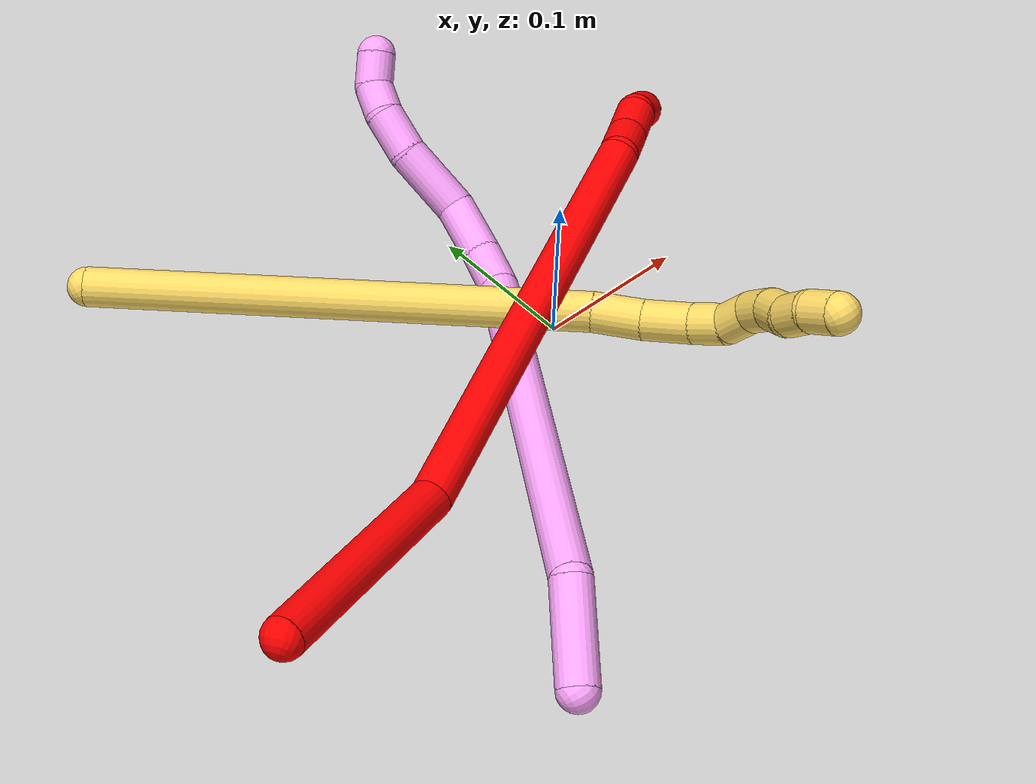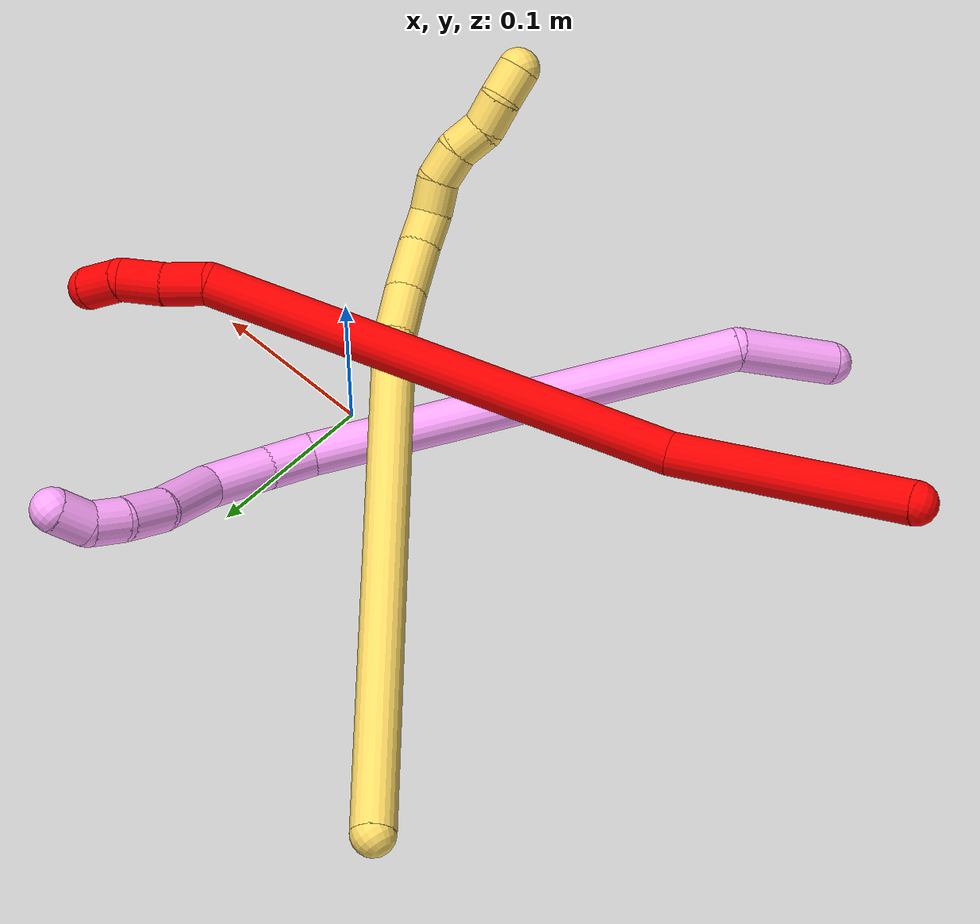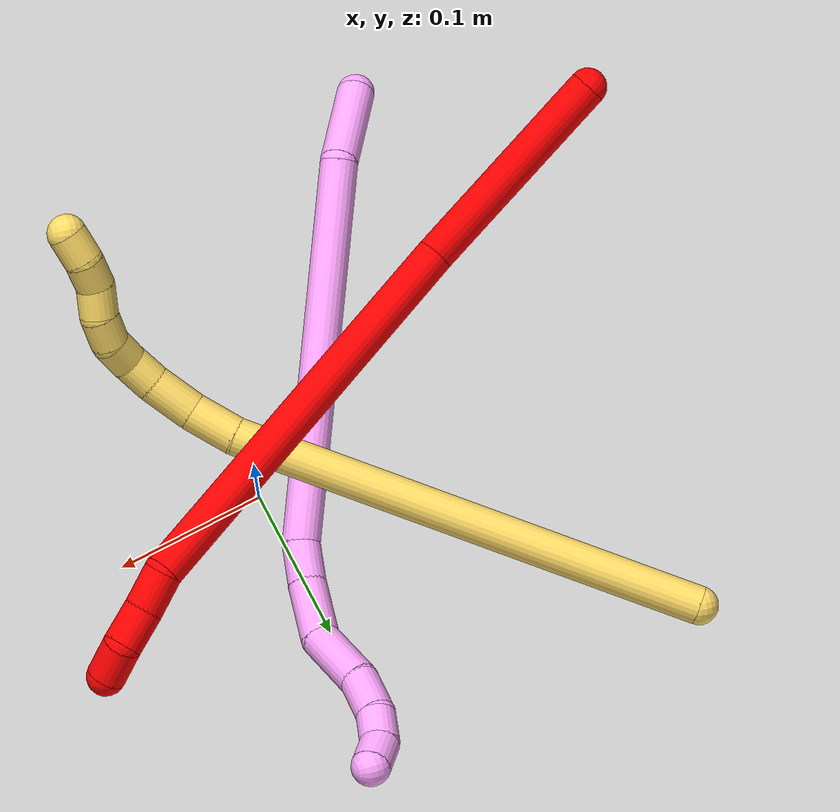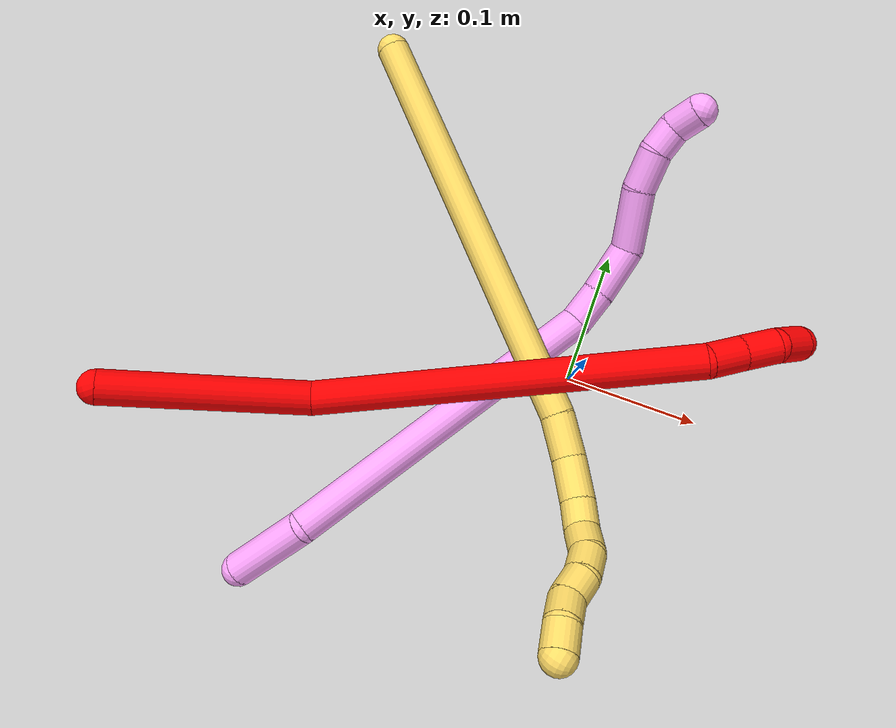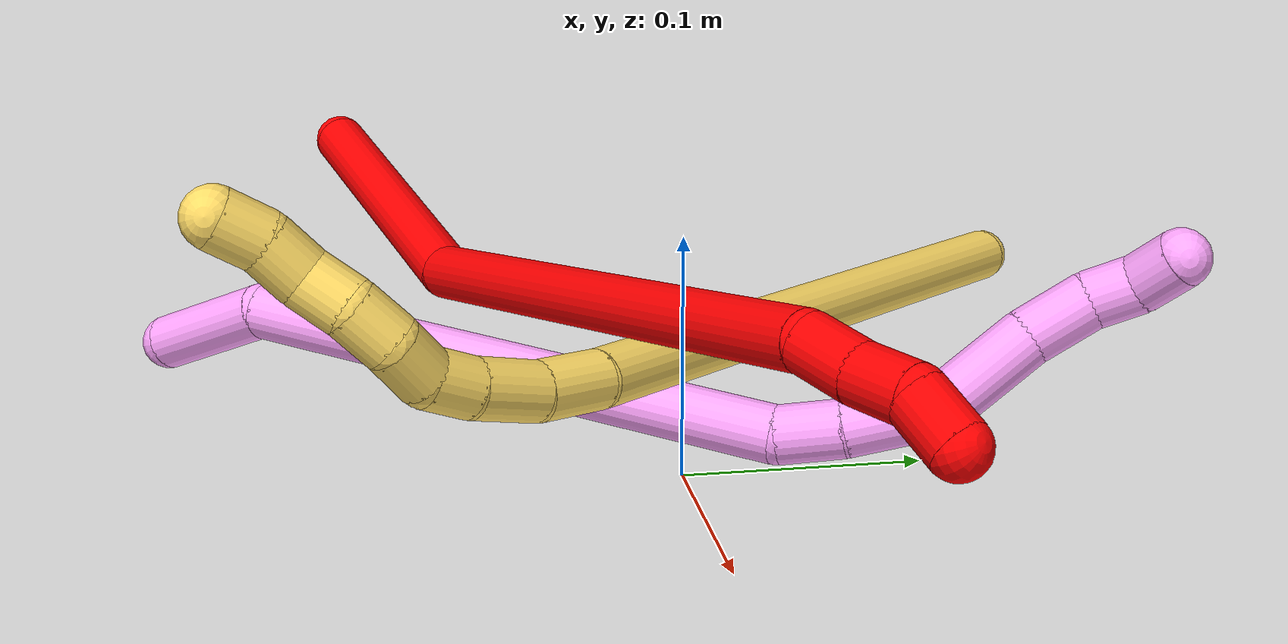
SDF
<sdf version="1.7">
 <world name="default">
  <model name="2">
   <static>0</static>
   <link name="2">
    <collision name="collision-cylinder-e_1_1_4">
     <pose>0.026063 0.039855 -0.055391 -2.51788 0.364831 -1.03947</pose>
     <geometry><cylinder><radius>0.0125</radius><length>0.146095</length></cylinder></geometry>
     <surface>
      <friction><ode><mu>1.16</mu><mu2>1.16</mu2><slip1>0</slip1><slip2>0</slip2></ode></friction>
      <contact><ode><kp>1e+06</kp><kd>1</kd><max_vel>0</max_vel><min_depth>0.001</min_depth></ode></contact>
     </surface>
    </collision>
    <visual name="visual-cylinder-e_1_1_4">
     <pose>0.026063 0.039855 -0.055391 -2.51788 0.364831 -1.03947</pose>
     <geometry><cylinder><radius>0.0125</radius><length>0.146095</length></cylinder></geometry>
     <material><ambient>1 0 0 1</ambient></material>
    </visual>
    <collision name="collision-cylinder-e_2_4_5">
     <pose>0.070415 0.117326 -0.242901 -2.86422 0.132363 -0.886634</pose>
     <geometry><cylinder><radius>0.0125</radius><length>0.277162</length></cylinder></geometry>
     <surface>
      <friction><ode><mu>1.16</mu><mu2>1.16</mu2><slip1>0</slip1><slip2>0</slip2></ode></friction>
      <contact><ode><kp>1e+06</kp><kd>1</kd><max_vel>0</max_vel><min_depth>0.001</min_depth></ode></contact>
     </surface>
    </collision>
    <visual name="visual-cylinder-e_2_4_5">
     <pose>0.070415 0.117326 -0.242901 -2.86422 0.132363 -0.886634</pose>
     <geometry><cylinder><radius>0.0125</radius><length>0.277162</length></cylinder></geometry>
     <material><ambient>1 0 0 1</ambient></material>
    </visual>
    <collision name="collision-cylinder-e_3_5_6">
     <pose>0.095317 0.1593 -0.385757 -2.75605 0.518521 -1.87271</pose>
     <geometry><cylinder><radius>0.0125</radius><length>0.026686</length></cylinder></geometry>
     <surface>
      <friction><ode><mu>1.16</mu><mu2>1.16</mu2><slip1>0</slip1><slip2>0</slip2></ode></friction>
      <contact><ode><kp>1e+06</kp><kd>1</kd><max_vel>0</max_vel><min_depth>0.001</min_depth></ode></contact>
     </surface>
    </collision>
    <visual name="visual-cylinder-e_3_5_6">
     <pose>0.095317 0.1593 -0.385757 -2.75605 0.518521 -1.87271</pose>
     <geometry><cylinder><radius>0.0125</radius><length>0.026686</length></cylinder></geometry>
     <material><ambient>1 0 0 1</ambient></material>
    </visual>
    <collision name="collision-cylinder-e_4_6_7">
     <pose>0.106756 0.167134 -0.407972 -2.84749 0.382631 -1.83585</pose>
     <geometry><cylinder><radius>0.0125</radius><length>0.025853</length></cylinder></geometry>
     <surface>
      <friction><ode><mu>1.16</mu><mu2>1.16</mu2><slip1>0</slip1><slip2>0</slip2></ode></friction>
      <contact><ode><kp>1e+06</kp><kd>1</kd><max_vel>0</max_vel><min_depth>0.001</min_depth></ode></contact>
     </surface>
    </collision>
    <visual name="visual-cylinder-e_4_6_7">
     <pose>0.106756 0.167134 -0.407972 -2.84749 0.382631 -1.83585</pose>
     <geometry><cylinder><radius>0.0125</radius><length>0.025853</length></cylinder></geometry>
     <material><ambient>1 0 0 1</ambient></material>
    </visual>
    <collision name="collision-cylinder-e_5_7_2">
     <pose>0.119554 0.176723 -0.426199 -2.40568 0.719057 -1.54544</pose>
     <geometry><cylinder><radius>0.0125</radius><length>0.024205</length></cylinder></geometry>
     <surface>
      <friction><ode><mu>1.16</mu><mu2>1.16</mu2><slip1>0</slip1><slip2>0</slip2></ode></friction>
      <contact><ode><kp>1e+06</kp><kd>1</kd><max_vel>0</max_vel><min_depth>0.001</min_depth></ode></contact>
     </surface>
    </collision>
    <visual name="visual-cylinder-e_5_7_2">
     <pose>0.119554 0.176723 -0.426199 -2.40568 0.719057 -1.54544</pose>
     <geometry><cylinder><radius>0.0125</radius><length>0.024205</length></cylinder></geometry>
     <material><ambient>1 0 0 1</ambient></material>
    </visual>
    <collision name="collision-sphere-2">
     <pose>0.127525 0.182836 -0.432949 0 -0 0</pose>
     <geometry><sphere><radius>0.0125</radius></sphere></geometry>
     <surface>
      <friction><ode><mu>1.16</mu><mu2>1.16</mu2><slip1>0</slip1><slip2>0</slip2></ode></friction>
      <contact><ode><kp>1e+06</kp><kd>1</kd><max_vel>0</max_vel><min_depth>0.001</min_depth></ode></contact>
     </surface>
    </collision>
    <visual name="visual-sphere-2">
     <pose>0.127525 0.182836 -0.432949 0 -0 0</pose>
     <geometry><sphere><radius>0.0125</radius></sphere></geometry>
     <material><ambient>1 0 0 1</ambient></material>
    </visual>
    <collision name="collision-sphere-7">
     <pose>0.111582 0.17061 -0.419449 0 -0 0</pose>
     <geometry><sphere><radius>0.0125</radius></sphere></geometry>
     <surface>
      <friction><ode><mu>1.16</mu><mu2>1.16</mu2><slip1>0</slip1><slip2>0</slip2></ode></friction>
      <contact><ode><kp>1e+06</kp><kd>1</kd><max_vel>0</max_vel><min_depth>0.001</min_depth></ode></contact>
     </surface>
    </collision>
    <visual name="visual-sphere-7">
     <pose>0.111582 0.17061 -0.419449 0 -0 0</pose>
     <geometry><sphere><radius>0.0125</radius></sphere></geometry>
     <material><ambient>1 0 0 1</ambient></material>
    </visual>
    <collision name="collision-sphere-6">
     <pose>0.10193 0.163658 -0.396496 0 -0 0</pose>
     <geometry><sphere><radius>0.0125</radius></sphere></geometry>
     <surface>
      <friction><ode><mu>1.16</mu><mu2>1.16</mu2><slip1>0</slip1><slip2>0</slip2></ode></friction>
      <contact><ode><kp>1e+06</kp><kd>1</kd><max_vel>0</max_vel><min_depth>0.001</min_depth></ode></contact>
     </surface>
    </collision>
    <visual name="visual-sphere-6">
     <pose>0.10193 0.163658 -0.396496 0 -0 0</pose>
     <geometry><sphere><radius>0.0125</radius></sphere></geometry>
     <material><ambient>1 0 0 1</ambient></material>
    </visual>
    <collision name="collision-sphere-5">
     <pose>0.088704 0.154941 -0.375019 0 -0 0</pose>
     <geometry><sphere><radius>0.0125</radius></sphere></geometry>
     <surface>
      <friction><ode><mu>1.16</mu><mu2>1.16</mu2><slip1>0</slip1><slip2>0</slip2></ode></friction>
      <contact><ode><kp>1e+06</kp><kd>1</kd><max_vel>0</max_vel><min_depth>0.001</min_depth></ode></contact>
     </surface>
    </collision>
    <visual name="visual-sphere-5">
     <pose>0.088704 0.154941 -0.375019 0 -0 0</pose>
     <geometry><sphere><radius>0.0125</radius></sphere></geometry>
     <material><ambient>1 0 0 1</ambient></material>
    </visual>
    <collision name="collision-sphere-1">
     <geometry><sphere><radius>0.0125</radius></sphere></geometry>
     <surface>
      <friction><ode><mu>1.16</mu><mu2>1.16</mu2><slip1>0</slip1><slip2>0</slip2></ode></friction>
      <contact><ode><kp>1e+06</kp><kd>1</kd><max_vel>0</max_vel><min_depth>0.001</min_depth></ode></contact>
     </surface>
    </collision>
    <visual name="visual-sphere-1">
     <geometry><sphere><radius>0.0125</radius></sphere></geometry>
     <material><ambient>1 0 0 1</ambient></material>
    </visual>
    <collision name="collision-sphere-4">
     <pose>0.052125 0.079711 -0.110782 0 -0 0</pose>
     <geometry><sphere><radius>0.0125</radius></sphere></geometry>
     <surface>
      <friction><ode><mu>1.16</mu><mu2>1.16</mu2><slip1>0</slip1><slip2>0</slip2></ode></friction>
      <contact><ode><kp>1e+06</kp><kd>1</kd><max_vel>0</max_vel><min_depth>0.001</min_depth></ode></contact>
     </surface>
    </collision>
    <visual name="visual-sphere-4">
     <pose>0.052125 0.079711 -0.110782 0 -0 0</pose>
     <geometry><sphere><radius>0.0125</radius></sphere></geometry>
     <material><ambient>1 0 0 1</ambient></material>
    </visual>
    <inertial>
     <pose>0.063042 0.102381 -0.213146 0 -0 0</pose>
     <mass>0.5</mass>
     <inertia>
      <ixx>-0.000338</ixx>
      <ixy>0</ixy>
      <ixz>0</ixz>
      <iyy>-0.00267</iyy>
      <iyz>0</iyz>
      <izz>-0.001</izz>
     </inertia>
    </inertial>
   </link>
   <pose>-0.305227 -0.126104 0.079796 -2.21176 0.842094 1.62914</pose>
  </model>
  <model name="4">
   <static>0</static>
   <link name="4">
    <collision name="collision-cylinder-e_1_1_4">
     <pose>0.00404 0.025318 0.016724 -0.987049 0.132352 -0.071269</pose>
     <geometry><cylinder><radius>0.0125</radius><length>0.061221</length></cylinder></geometry>
     <surface>
      <friction><ode><mu>1.16</mu><mu2>1.16</mu2><slip1>0</slip1><slip2>0</slip2></ode></friction>
      <contact><ode><kp>1e+06</kp><kd>1</kd><max_vel>0</max_vel><min_depth>0.001</min_depth></ode></contact>
     </surface>
    </collision>
    <visual name="visual-cylinder-e_1_1_4">
     <pose>0.00404 0.025318 0.016724 -0.987049 0.132352 -0.071269</pose>
     <geometry><cylinder><radius>0.0125</radius><length>0.061221</length></cylinder></geometry>
     <material><ambient>1 0.65098 0.996078 1</ambient></material>
    </visual>
    <collision name="collision-cylinder-e_2_4_5">
     <pose>0.08127 0.140519 0.082413 -1.07197 0.620769 -0.376531</pose>
     <geometry><cylinder><radius>0.0125</radius><length>0.251663</length></cylinder></geometry>
     <surface>
      <friction><ode><mu>1.16</mu><mu2>1.16</mu2><slip1>0</slip1><slip2>0</slip2></ode></friction>
      <contact><ode><kp>1e+06</kp><kd>1</kd><max_vel>0</max_vel><min_depth>0.001</min_depth></ode></contact>
     </surface>
    </collision>
    <visual name="visual-cylinder-e_2_4_5">
     <pose>0.08127 0.140519 0.082413 -1.07197 0.620769 -0.376531</pose>
     <geometry><cylinder><radius>0.0125</radius><length>0.251663</length></cylinder></geometry>
     <material><ambient>1 0.65098 0.996078 1</ambient></material>
    </visual>
    <collision name="collision-cylinder-e_3_5_6">
     <pose>0.159305 0.243271 0.134481 -1.33427 0.350711 -0.277296</pose>
     <geometry><cylinder><radius>0.0125</radius><length>0.028193</length></cylinder></geometry>
     <surface>
      <friction><ode><mu>1.16</mu><mu2>1.16</mu2><slip1>0</slip1><slip2>0</slip2></ode></friction>
      <contact><ode><kp>1e+06</kp><kd>1</kd><max_vel>0</max_vel><min_depth>0.001</min_depth></ode></contact>
     </surface>
    </collision>
    <visual name="visual-cylinder-e_3_5_6">
     <pose>0.159305 0.243271 0.134481 -1.33427 0.350711 -0.277296</pose>
     <geometry><cylinder><radius>0.0125</radius><length>0.028193</length></cylinder></geometry>
     <material><ambient>1 0.65098 0.996078 1</ambient></material>
    </visual>
    <collision name="collision-cylinder-e_4_6_7">
     <pose>0.168936 0.274979 0.140815 -1.40094 0.245459 -0.207245</pose>
     <geometry><cylinder><radius>0.0125</radius><length>0.039408</length></cylinder></geometry>
     <surface>
      <friction><ode><mu>1.16</mu><mu2>1.16</mu2><slip1>0</slip1><slip2>0</slip2></ode></friction>
      <contact><ode><kp>1e+06</kp><kd>1</kd><max_vel>0</max_vel><min_depth>0.001</min_depth></ode></contact>
     </surface>
    </collision>
    <visual name="visual-cylinder-e_4_6_7">
     <pose>0.168936 0.274979 0.140815 -1.40094 0.245459 -0.207245</pose>
     <geometry><cylinder><radius>0.0125</radius><length>0.039408</length></cylinder></geometry>
     <material><ambient>1 0.65098 0.996078 1</ambient></material>
    </visual>
    <collision name="collision-cylinder-e_5_7_8">
     <pose>0.169709 0.316738 0.140722 -1.7148 -0.171665 0.19819</pose>
     <geometry><cylinder><radius>0.0125</radius><length>0.047011</length></cylinder></geometry>
     <surface>
      <friction><ode><mu>1.16</mu><mu2>1.16</mu2><slip1>0</slip1><slip2>0</slip2></ode></friction>
      <contact><ode><kp>1e+06</kp><kd>1</kd><max_vel>0</max_vel><min_depth>0.001</min_depth></ode></contact>
     </surface>
    </collision>
    <visual name="visual-cylinder-e_5_7_8">
     <pose>0.169709 0.316738 0.140722 -1.7148 -0.171665 0.19819</pose>
     <geometry><cylinder><radius>0.0125</radius><length>0.047011</length></cylinder></geometry>
     <material><ambient>1 0.65098 0.996078 1</ambient></material>
    </visual>
    <collision name="collision-cylinder-e_6_8_9">
     <pose>0.164689 0.354538 0.138404 -1.50332 -0.067233 0.062846</pose>
     <geometry><cylinder><radius>0.0125</radius><length>0.029896</length></cylinder></geometry>
     <surface>
      <friction><ode><mu>1.16</mu><mu2>1.16</mu2><slip1>0</slip1><slip2>0</slip2></ode></friction>
      <contact><ode><kp>1e+06</kp><kd>1</kd><max_vel>0</max_vel><min_depth>0.001</min_depth></ode></contact>
     </surface>
    </collision>
    <visual name="visual-cylinder-e_6_8_9">
     <pose>0.164689 0.354538 0.138404 -1.50332 -0.067233 0.062846</pose>
     <geometry><cylinder><radius>0.0125</radius><length>0.029896</length></cylinder></geometry>
     <material><ambient>1 0.65098 0.996078 1</ambient></material>
    </visual>
    <collision name="collision-cylinder-e_7_9_10">
     <pose>0.164902 0.379395 0.142341 -1.28499 0.116488 -0.087227</pose>
     <geometry><cylinder><radius>0.0125</radius><length>0.020938</length></cylinder></geometry>
     <surface>
      <friction><ode><mu>1.16</mu><mu2>1.16</mu2><slip1>0</slip1><slip2>0</slip2></ode></friction>
      <contact><ode><kp>1e+06</kp><kd>1</kd><max_vel>0</max_vel><min_depth>0.001</min_depth></ode></contact>
     </surface>
    </collision>
    <visual name="visual-cylinder-e_7_9_10">
     <pose>0.164902 0.379395 0.142341 -1.28499 0.116488 -0.087227</pose>
     <geometry><cylinder><radius>0.0125</radius><length>0.020938</length></cylinder></geometry>
     <material><ambient>1 0.65098 0.996078 1</ambient></material>
    </visual>
    <collision name="collision-cylinder-e_8_10_2">
     <pose>0.164457 0.397715 0.151983 -0.893446 -0.153952 0.073858</pose>
     <geometry><cylinder><radius>0.0125</radius><length>0.021671</length></cylinder></geometry>
     <surface>
      <friction><ode><mu>1.16</mu><mu2>1.16</mu2><slip1>0</slip1><slip2>0</slip2></ode></friction>
      <contact><ode><kp>1e+06</kp><kd>1</kd><max_vel>0</max_vel><min_depth>0.001</min_depth></ode></contact>
     </surface>
    </collision>
    <visual name="visual-cylinder-e_8_10_2">
     <pose>0.164457 0.397715 0.151983 -0.893446 -0.153952 0.073858</pose>
     <geometry><cylinder><radius>0.0125</radius><length>0.021671</length></cylinder></geometry>
     <material><ambient>1 0.65098 0.996078 1</ambient></material>
    </visual>
    <collision name="collision-sphere-2">
     <pose>0.162795 0.406058 0.158694 0 -0 0</pose>
     <geometry><sphere><radius>0.0125</radius></sphere></geometry>
     <surface>
      <friction><ode><mu>1.16</mu><mu2>1.16</mu2><slip1>0</slip1><slip2>0</slip2></ode></friction>
      <contact><ode><kp>1e+06</kp><kd>1</kd><max_vel>0</max_vel><min_depth>0.001</min_depth></ode></contact>
     </surface>
    </collision>
    <visual name="visual-sphere-2">
     <pose>0.162795 0.406058 0.158694 0 -0 0</pose>
     <geometry><sphere><radius>0.0125</radius></sphere></geometry>
     <material><ambient>1 0.65098 0.996078 1</ambient></material>
    </visual>
    <collision name="collision-sphere-10">
     <pose>0.166118 0.389371 0.145273 0 -0 0</pose>
     <geometry><sphere><radius>0.0125</radius></sphere></geometry>
     <surface>
      <friction><ode><mu>1.16</mu><mu2>1.16</mu2><slip1>0</slip1><slip2>0</slip2></ode></friction>
      <contact><ode><kp>1e+06</kp><kd>1</kd><max_vel>0</max_vel><min_depth>0.001</min_depth></ode></contact>
     </surface>
    </collision>
    <visual name="visual-sphere-10">
     <pose>0.166118 0.389371 0.145273 0 -0 0</pose>
     <geometry><sphere><radius>0.0125</radius></sphere></geometry>
     <material><ambient>1 0.65098 0.996078 1</ambient></material>
    </visual>
    <collision name="collision-sphere-9">
     <pose>0.163685 0.369418 0.13941 0 -0 0</pose>
     <geometry><sphere><radius>0.0125</radius></sphere></geometry>
     <surface>
      <friction><ode><mu>1.16</mu><mu2>1.16</mu2><slip1>0</slip1><slip2>0</slip2></ode></friction>
      <contact><ode><kp>1e+06</kp><kd>1</kd><max_vel>0</max_vel><min_depth>0.001</min_depth></ode></contact>
     </surface>
    </collision>
    <visual name="visual-sphere-9">
     <pose>0.163685 0.369418 0.13941 0 -0 0</pose>
     <geometry><sphere><radius>0.0125</radius></sphere></geometry>
     <material><ambient>1 0.65098 0.996078 1</ambient></material>
    </visual>
    <collision name="collision-sphere-4">
     <pose>0.008079 0.050636 0.033447 0 -0 0</pose>
     <geometry><sphere><radius>0.0125</radius></sphere></geometry>
     <surface>
      <friction><ode><mu>1.16</mu><mu2>1.16</mu2><slip1>0</slip1><slip2>0</slip2></ode></friction>
      <contact><ode><kp>1e+06</kp><kd>1</kd><max_vel>0</max_vel><min_depth>0.001</min_depth></ode></contact>
     </surface>
    </collision>
    <visual name="visual-sphere-4">
     <pose>0.008079 0.050636 0.033447 0 -0 0</pose>
     <geometry><sphere><radius>0.0125</radius></sphere></geometry>
     <material><ambient>1 0.65098 0.996078 1</ambient></material>
    </visual>
    <collision name="collision-sphere-1">
     <geometry><sphere><radius>0.0125</radius></sphere></geometry>
     <surface>
      <friction><ode><mu>1.16</mu><mu2>1.16</mu2><slip1>0</slip1><slip2>0</slip2></ode></friction>
      <contact><ode><kp>1e+06</kp><kd>1</kd><max_vel>0</max_vel><min_depth>0.001</min_depth></ode></contact>
     </surface>
    </collision>
    <visual name="visual-sphere-1">
     <geometry><sphere><radius>0.0125</radius></sphere></geometry>
     <material><ambient>1 0.65098 0.996078 1</ambient></material>
    </visual>
    <collision name="collision-sphere-8">
     <pose>0.165693 0.339658 0.137398 0 -0 0</pose>
     <geometry><sphere><radius>0.0125</radius></sphere></geometry>
     <surface>
      <friction><ode><mu>1.16</mu><mu2>1.16</mu2><slip1>0</slip1><slip2>0</slip2></ode></friction>
      <contact><ode><kp>1e+06</kp><kd>1</kd><max_vel>0</max_vel><min_depth>0.001</min_depth></ode></contact>
     </surface>
    </collision>
    <visual name="visual-sphere-8">
     <pose>0.165693 0.339658 0.137398 0 -0 0</pose>
     <geometry><sphere><radius>0.0125</radius></sphere></geometry>
     <material><ambient>1 0.65098 0.996078 1</ambient></material>
    </visual>
    <collision name="collision-sphere-5">
     <pose>0.154461 0.230401 0.131379 0 -0 0</pose>
     <geometry><sphere><radius>0.0125</radius></sphere></geometry>
     <surface>
      <friction><ode><mu>1.16</mu><mu2>1.16</mu2><slip1>0</slip1><slip2>0</slip2></ode></friction>
      <contact><ode><kp>1e+06</kp><kd>1</kd><max_vel>0</max_vel><min_depth>0.001</min_depth></ode></contact>
     </surface>
    </collision>
    <visual name="visual-sphere-5">
     <pose>0.154461 0.230401 0.131379 0 -0 0</pose>
     <geometry><sphere><radius>0.0125</radius></sphere></geometry>
     <material><ambient>1 0.65098 0.996078 1</ambient></material>
    </visual>
    <collision name="collision-sphere-6">
     <pose>0.164148 0.256141 0.137584 0 -0 0</pose>
     <geometry><sphere><radius>0.0125</radius></sphere></geometry>
     <surface>
      <friction><ode><mu>1.16</mu><mu2>1.16</mu2><slip1>0</slip1><slip2>0</slip2></ode></friction>
      <contact><ode><kp>1e+06</kp><kd>1</kd><max_vel>0</max_vel><min_depth>0.001</min_depth></ode></contact>
     </surface>
    </collision>
    <visual name="visual-sphere-6">
     <pose>0.164148 0.256141 0.137584 0 -0 0</pose>
     <geometry><sphere><radius>0.0125</radius></sphere></geometry>
     <material><ambient>1 0.65098 0.996078 1</ambient></material>
    </visual>
    <collision name="collision-sphere-7">
     <pose>0.173724 0.293818 0.144045 0 -0 0</pose>
     <geometry><sphere><radius>0.0125</radius></sphere></geometry>
     <surface>
      <friction><ode><mu>1.16</mu><mu2>1.16</mu2><slip1>0</slip1><slip2>0</slip2></ode></friction>
      <contact><ode><kp>1e+06</kp><kd>1</kd><max_vel>0</max_vel><min_depth>0.001</min_depth></ode></contact>
     </surface>
    </collision>
    <visual name="visual-sphere-7">
     <pose>0.173724 0.293818 0.144045 0 -0 0</pose>
     <geometry><sphere><radius>0.0125</radius></sphere></geometry>
     <material><ambient>1 0.65098 0.996078 1</ambient></material>
    </visual>
    <inertial>
     <pose>0.103534 0.19332 0.096264 0 -0 0</pose>
     <mass>0.5</mass>
     <inertia>
      <ixx>0.00067</ixx>
      <ixy>0</ixy>
      <ixz>0</ixz>
      <iyy>0.000492</iyy>
      <iyz>0</iyz>
      <izz>-0.001768</izz>
     </inertia>
    </inertial>
   </link>
   <pose>-0.181196 -0.212747 0.011493 1.07322 1.04337 0.993827</pose>
  </model>
  <model name="5">
   <static>0</static>
   <link name="5">
    <collision name="collision-cylinder-e_1_1_4">
     <pose>-0.036419 -0.084703 -0.127364 2.55471 -0.233744 -0.741207</pose>
     <geometry><cylinder><radius>0.0125</radius><length>0.314468</length></cylinder></geometry>
     <surface>
      <friction><ode><mu>1.16</mu><mu2>1.16</mu2><slip1>0</slip1><slip2>0</slip2></ode></friction>
      <contact><ode><kp>1e+06</kp><kd>1</kd><max_vel>0</max_vel><min_depth>0.001</min_depth></ode></contact>
     </surface>
    </collision>
    <visual name="visual-cylinder-e_1_1_4">
     <pose>-0.036419 -0.084703 -0.127364 2.55471 -0.233744 -0.741207</pose>
     <geometry><cylinder><radius>0.0125</radius><length>0.314468</length></cylinder></geometry>
     <material><ambient>1 0.858824 0.4 1</ambient></material>
    </visual>
    <collision name="collision-cylinder-e_2_4_5">
     <pose>-0.076104 -0.180134 -0.266061 2.38353 -0.206324 -0.508615</pose>
     <geometry><cylinder><radius>0.0125</radius><length>0.031887</length></cylinder></geometry>
     <surface>
      <friction><ode><mu>1.16</mu><mu2>1.16</mu2><slip1>0</slip1><slip2>0</slip2></ode></friction>
      <contact><ode><kp>1e+06</kp><kd>1</kd><max_vel>0</max_vel><min_depth>0.001</min_depth></ode></contact>
     </surface>
    </collision>
    <visual name="visual-cylinder-e_2_4_5">
     <pose>-0.076104 -0.180134 -0.266061 2.38353 -0.206324 -0.508615</pose>
     <geometry><cylinder><radius>0.0125</radius><length>0.031887</length></cylinder></geometry>
     <material><ambient>1 0.858824 0.4 1</ambient></material>
    </visual>
    <collision name="collision-cylinder-e_3_5_6">
     <pose>-0.079613 -0.202221 -0.28805 2.32439 -0.015626 -0.036087</pose>
     <geometry><cylinder><radius>0.0125</radius><length>0.031154</length></cylinder></geometry>
     <surface>
      <friction><ode><mu>1.16</mu><mu2>1.16</mu2><slip1>0</slip1><slip2>0</slip2></ode></friction>
      <contact><ode><kp>1e+06</kp><kd>1</kd><max_vel>0</max_vel><min_depth>0.001</min_depth></ode></contact>
     </surface>
    </collision>
    <visual name="visual-cylinder-e_3_5_6">
     <pose>-0.079613 -0.202221 -0.28805 2.32439 -0.015626 -0.036087</pose>
     <geometry><cylinder><radius>0.0125</radius><length>0.031154</length></cylinder></geometry>
     <material><ambient>1 0.858824 0.4 1</ambient></material>
    </visual>
    <collision name="collision-cylinder-e_4_6_7">
     <pose>-0.078469 -0.221603 -0.305314 2.25954 0.132722 0.279745</pose>
     <geometry><cylinder><radius>0.0125</radius><length>0.020971</length></cylinder></geometry>
     <surface>
      <friction><ode><mu>1.16</mu><mu2>1.16</mu2><slip1>0</slip1><slip2>0</slip2></ode></friction>
      <contact><ode><kp>1e+06</kp><kd>1</kd><max_vel>0</max_vel><min_depth>0.001</min_depth></ode></contact>
     </surface>
    </collision>
    <visual name="visual-cylinder-e_4_6_7">
     <pose>-0.078469 -0.221603 -0.305314 2.25954 0.132722 0.279745</pose>
     <geometry><cylinder><radius>0.0125</radius><length>0.020971</length></cylinder></geometry>
     <material><ambient>1 0.858824 0.4 1</ambient></material>
    </visual>
    <collision name="collision-cylinder-e_5_7_8">
     <pose>-0.071265 -0.235855 -0.317957 2.34068 0.590746 1.24642</pose>
     <geometry><cylinder><radius>0.0125</radius><length>0.020888</length></cylinder></geometry>
     <surface>
      <friction><ode><mu>1.16</mu><mu2>1.16</mu2><slip1>0</slip1><slip2>0</slip2></ode></friction>
      <contact><ode><kp>1e+06</kp><kd>1</kd><max_vel>0</max_vel><min_depth>0.001</min_depth></ode></contact>
     </surface>
    </collision>
    <visual name="visual-cylinder-e_5_7_8">
     <pose>-0.071265 -0.235855 -0.317957 2.34068 0.590746 1.24642</pose>
     <geometry><cylinder><radius>0.0125</radius><length>0.020888</length></cylinder></geometry>
     <material><ambient>1 0.858824 0.4 1</ambient></material>
    </visual>
    <collision name="collision-cylinder-e_6_8_9">
     <pose>-0.059944 -0.250202 -0.326874 1.91159 0.568495 0.784342</pose>
     <geometry><cylinder><radius>0.0125</radius><length>0.020443</length></cylinder></geometry>
     <surface>
      <friction><ode><mu>1.16</mu><mu2>1.16</mu2><slip1>0</slip1><slip2>0</slip2></ode></friction>
      <contact><ode><kp>1e+06</kp><kd>1</kd><max_vel>0</max_vel><min_depth>0.001</min_depth></ode></contact>
     </surface>
    </collision>
    <visual name="visual-cylinder-e_6_8_9">
     <pose>-0.059944 -0.250202 -0.326874 1.91159 0.568495 0.784342</pose>
     <geometry><cylinder><radius>0.0125</radius><length>0.020443</length></cylinder></geometry>
     <material><ambient>1 0.858824 0.4 1</ambient></material>
    </visual>
    <collision name="collision-cylinder-e_7_9_10">
     <pose>-0.050197 -0.267397 -0.329881 1.58493 0.437386 0.443411</pose>
     <geometry><cylinder><radius>0.0125</radius><length>0.020043</length></cylinder></geometry>
     <surface>
      <friction><ode><mu>1.16</mu><mu2>1.16</mu2><slip1>0</slip1><slip2>0</slip2></ode></friction>
      <contact><ode><kp>1e+06</kp><kd>1</kd><max_vel>0</max_vel><min_depth>0.001</min_depth></ode></contact>
     </surface>
    </collision>
    <visual name="visual-cylinder-e_7_9_10">
     <pose>-0.050197 -0.267397 -0.329881 1.58493 0.437386 0.443411</pose>
     <geometry><cylinder><radius>0.0125</radius><length>0.020043</length></cylinder></geometry>
     <material><ambient>1 0.858824 0.4 1</ambient></material>
    </visual>
    <collision name="collision-cylinder-e_8_10_11">
     <pose>-0.040366 -0.284104 -0.333335 1.98181 0.59109 0.870215</pose>
     <geometry><cylinder><radius>0.0125</radius><length>0.020047</length></cylinder></geometry>
     <surface>
      <friction><ode><mu>1.16</mu><mu2>1.16</mu2><slip1>0</slip1><slip2>0</slip2></ode></friction>
      <contact><ode><kp>1e+06</kp><kd>1</kd><max_vel>0</max_vel><min_depth>0.001</min_depth></ode></contact>
     </surface>
    </collision>
    <visual name="visual-cylinder-e_8_10_11">
     <pose>-0.040366 -0.284104 -0.333335 1.98181 0.59109 0.870215</pose>
     <geometry><cylinder><radius>0.0125</radius><length>0.020047</length></cylinder></geometry>
     <material><ambient>1 0.858824 0.4 1</ambient></material>
    </visual>
    <collision name="collision-cylinder-e_9_11_2">
     <pose>-0.031776 -0.300396 -0.340776 2.01441 0.303549 0.474918</pose>
     <geometry><cylinder><radius>0.0125</radius><length>0.020098</length></cylinder></geometry>
     <surface>
      <friction><ode><mu>1.16</mu><mu2>1.16</mu2><slip1>0</slip1><slip2>0</slip2></ode></friction>
      <contact><ode><kp>1e+06</kp><kd>1</kd><max_vel>0</max_vel><min_depth>0.001</min_depth></ode></contact>
     </surface>
    </collision>
    <visual name="visual-cylinder-e_9_11_2">
     <pose>-0.031776 -0.300396 -0.340776 2.01441 0.303549 0.474918</pose>
     <geometry><cylinder><radius>0.0125</radius><length>0.020098</length></cylinder></geometry>
     <material><ambient>1 0.858824 0.4 1</ambient></material>
    </visual>
    <collision name="collision-sphere-2">
     <pose>-0.028773 -0.309057 -0.344892 0 -0 0</pose>
     <geometry><sphere><radius>0.0125</radius></sphere></geometry>
     <surface>
      <friction><ode><mu>1.16</mu><mu2>1.16</mu2><slip1>0</slip1><slip2>0</slip2></ode></friction>
      <contact><ode><kp>1e+06</kp><kd>1</kd><max_vel>0</max_vel><min_depth>0.001</min_depth></ode></contact>
     </surface>
    </collision>
    <visual name="visual-sphere-2">
     <pose>-0.028773 -0.309057 -0.344892 0 -0 0</pose>
     <geometry><sphere><radius>0.0125</radius></sphere></geometry>
     <material><ambient>1 0.858824 0.4 1</ambient></material>
    </visual>
    <collision name="collision-sphere-11">
     <pose>-0.03478 -0.291734 -0.33666 0 -0 0</pose>
     <geometry><sphere><radius>0.0125</radius></sphere></geometry>
     <surface>
      <friction><ode><mu>1.16</mu><mu2>1.16</mu2><slip1>0</slip1><slip2>0</slip2></ode></friction>
      <contact><ode><kp>1e+06</kp><kd>1</kd><max_vel>0</max_vel><min_depth>0.001</min_depth></ode></contact>
     </surface>
    </collision>
    <visual name="visual-sphere-11">
     <pose>-0.03478 -0.291734 -0.33666 0 -0 0</pose>
     <geometry><sphere><radius>0.0125</radius></sphere></geometry>
     <material><ambient>1 0.858824 0.4 1</ambient></material>
    </visual>
    <collision name="collision-sphere-10">
     <pose>-0.045952 -0.276475 -0.330009 0 -0 0</pose>
     <geometry><sphere><radius>0.0125</radius></sphere></geometry>
     <surface>
      <friction><ode><mu>1.16</mu><mu2>1.16</mu2><slip1>0</slip1><slip2>0</slip2></ode></friction>
      <contact><ode><kp>1e+06</kp><kd>1</kd><max_vel>0</max_vel><min_depth>0.001</min_depth></ode></contact>
     </surface>
    </collision>
    <visual name="visual-sphere-10">
     <pose>-0.045952 -0.276475 -0.330009 0 -0 0</pose>
     <geometry><sphere><radius>0.0125</radius></sphere></geometry>
     <material><ambient>1 0.858824 0.4 1</ambient></material>
    </visual>
    <collision name="collision-sphere-9">
     <pose>-0.054442 -0.25832 -0.329753 0 -0 0</pose>
     <geometry><sphere><radius>0.0125</radius></sphere></geometry>
     <surface>
      <friction><ode><mu>1.16</mu><mu2>1.16</mu2><slip1>0</slip1><slip2>0</slip2></ode></friction>
      <contact><ode><kp>1e+06</kp><kd>1</kd><max_vel>0</max_vel><min_depth>0.001</min_depth></ode></contact>
     </surface>
    </collision>
    <visual name="visual-sphere-9">
     <pose>-0.054442 -0.25832 -0.329753 0 -0 0</pose>
     <geometry><sphere><radius>0.0125</radius></sphere></geometry>
     <material><ambient>1 0.858824 0.4 1</ambient></material>
    </visual>
    <collision name="collision-sphere-4">
     <pose>-0.072838 -0.169405 -0.254729 0 -0 0</pose>
     <geometry><sphere><radius>0.0125</radius></sphere></geometry>
     <surface>
      <friction><ode><mu>1.16</mu><mu2>1.16</mu2><slip1>0</slip1><slip2>0</slip2></ode></friction>
      <contact><ode><kp>1e+06</kp><kd>1</kd><max_vel>0</max_vel><min_depth>0.001</min_depth></ode></contact>
     </surface>
    </collision>
    <visual name="visual-sphere-4">
     <pose>-0.072838 -0.169405 -0.254729 0 -0 0</pose>
     <geometry><sphere><radius>0.0125</radius></sphere></geometry>
     <material><ambient>1 0.858824 0.4 1</ambient></material>
    </visual>
    <collision name="collision-sphere-1">
     <geometry><sphere><radius>0.0125</radius></sphere></geometry>
     <surface>
      <friction><ode><mu>1.16</mu><mu2>1.16</mu2><slip1>0</slip1><slip2>0</slip2></ode></friction>
      <contact><ode><kp>1e+06</kp><kd>1</kd><max_vel>0</max_vel><min_depth>0.001</min_depth></ode></contact>
     </surface>
    </collision>
    <visual name="visual-sphere-1">
     <geometry><sphere><radius>0.0125</radius></sphere></geometry>
     <material><ambient>1 0.858824 0.4 1</ambient></material>
    </visual>
    <collision name="collision-sphere-8">
     <pose>-0.065447 -0.242083 -0.323995 0 -0 0</pose>
     <geometry><sphere><radius>0.0125</radius></sphere></geometry>
     <surface>
      <friction><ode><mu>1.16</mu><mu2>1.16</mu2><slip1>0</slip1><slip2>0</slip2></ode></friction>
      <contact><ode><kp>1e+06</kp><kd>1</kd><max_vel>0</max_vel><min_depth>0.001</min_depth></ode></contact>
     </surface>
    </collision>
    <visual name="visual-sphere-8">
     <pose>-0.065447 -0.242083 -0.323995 0 -0 0</pose>
     <geometry><sphere><radius>0.0125</radius></sphere></geometry>
     <material><ambient>1 0.858824 0.4 1</ambient></material>
    </visual>
    <collision name="collision-sphere-5">
     <pose>-0.07937 -0.190863 -0.277393 0 -0 0</pose>
     <geometry><sphere><radius>0.0125</radius></sphere></geometry>
     <surface>
      <friction><ode><mu>1.16</mu><mu2>1.16</mu2><slip1>0</slip1><slip2>0</slip2></ode></friction>
      <contact><ode><kp>1e+06</kp><kd>1</kd><max_vel>0</max_vel><min_depth>0.001</min_depth></ode></contact>
     </surface>
    </collision>
    <visual name="visual-sphere-5">
     <pose>-0.07937 -0.190863 -0.277393 0 -0 0</pose>
     <geometry><sphere><radius>0.0125</radius></sphere></geometry>
     <material><ambient>1 0.858824 0.4 1</ambient></material>
    </visual>
    <collision name="collision-sphere-6">
     <pose>-0.079857 -0.213579 -0.298708 0 -0 0</pose>
     <geometry><sphere><radius>0.0125</radius></sphere></geometry>
     <surface>
      <friction><ode><mu>1.16</mu><mu2>1.16</mu2><slip1>0</slip1><slip2>0</slip2></ode></friction>
      <contact><ode><kp>1e+06</kp><kd>1</kd><max_vel>0</max_vel><min_depth>0.001</min_depth></ode></contact>
     </surface>
    </collision>
    <visual name="visual-sphere-6">
     <pose>-0.079857 -0.213579 -0.298708 0 -0 0</pose>
     <geometry><sphere><radius>0.0125</radius></sphere></geometry>
     <material><ambient>1 0.858824 0.4 1</ambient></material>
    </visual>
    <collision name="collision-sphere-7">
     <pose>-0.077082 -0.229627 -0.311919 0 -0 0</pose>
     <geometry><sphere><radius>0.0125</radius></sphere></geometry>
     <surface>
      <friction><ode><mu>1.16</mu><mu2>1.16</mu2><slip1>0</slip1><slip2>0</slip2></ode></friction>
      <contact><ode><kp>1e+06</kp><kd>1</kd><max_vel>0</max_vel><min_depth>0.001</min_depth></ode></contact>
     </surface>
    </collision>
    <visual name="visual-sphere-7">
     <pose>-0.077082 -0.229627 -0.311919 0 -0 0</pose>
     <geometry><sphere><radius>0.0125</radius></sphere></geometry>
     <material><ambient>1 0.858824 0.4 1</ambient></material>
    </visual>
    <inertial>
     <pose>-0.046346 -0.140923 -0.194759 0 -0 0</pose>
     <mass>0.5</mass>
     <inertia>
      <ixx>0.000172</ixx>
      <ixy>0</ixy>
      <ixz>0</ixz>
      <iyy>-0.003111</iyy>
      <iyz>0</iyz>
      <izz>0.001988</izz>
     </inertia>
    </inertial>
   </link>
   <pose>-0.214115 0.197414 0.027196 -2.6708 -1.28709 2.42502</pose>
  </model>
 </world>
</sdf>
